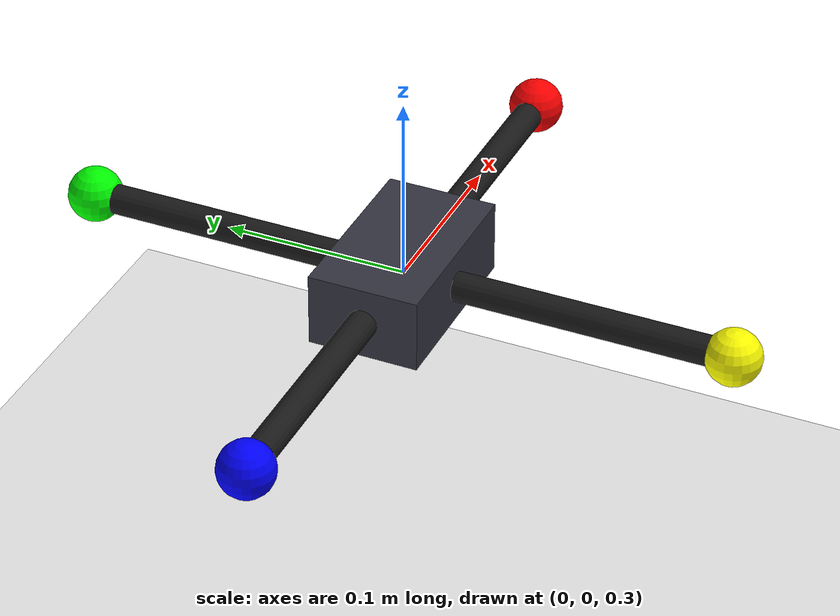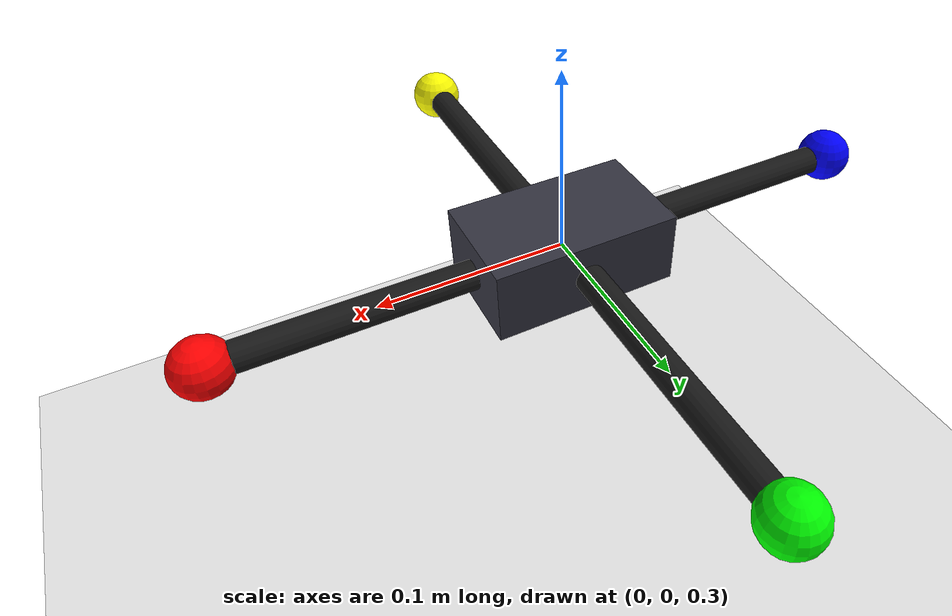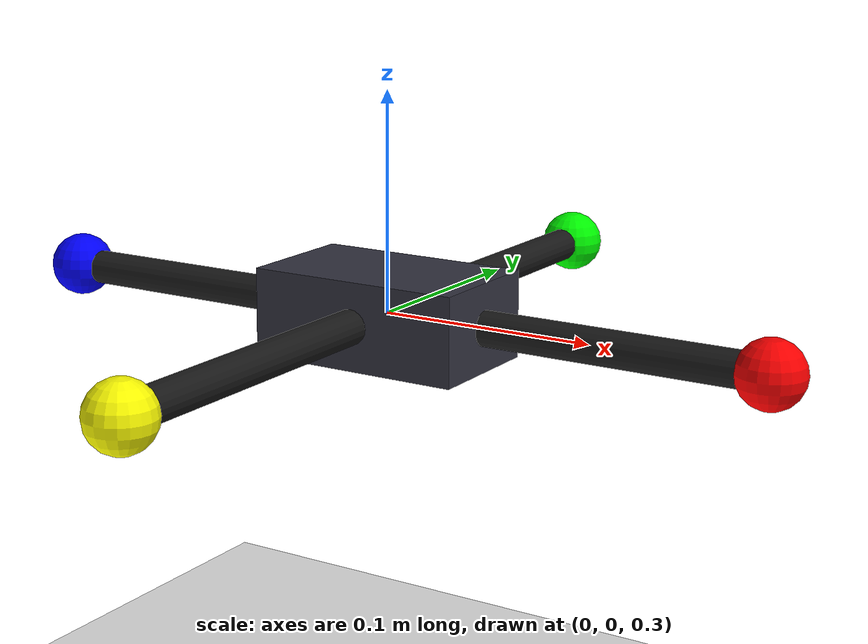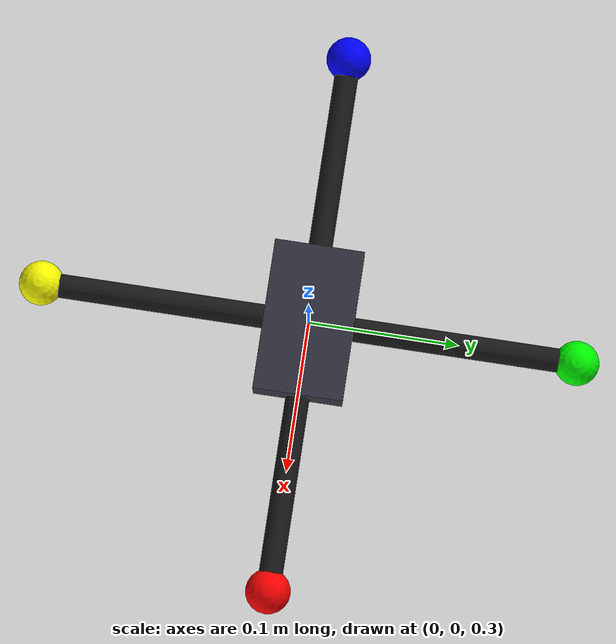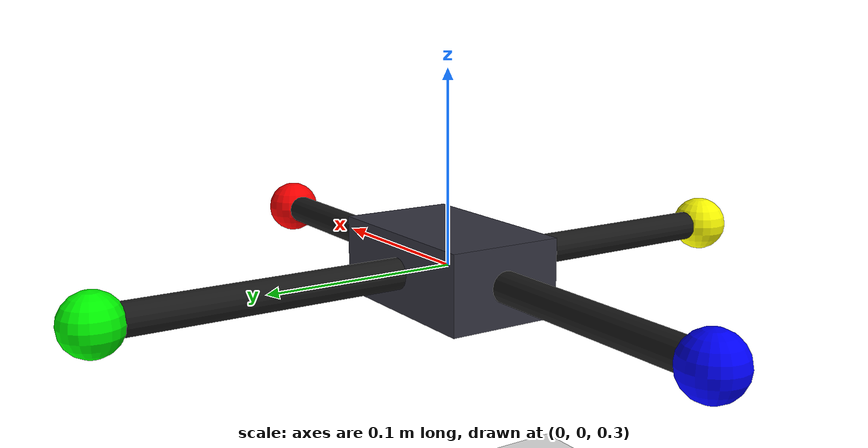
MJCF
<mujoco model="quadrotor">
  <compiler angle="radian" coordinate="local"/>
  <option timestep="0.002" gravity="0 0 -9.81" integrator="RK4"/>

  <visual>
    <headlight ambient="0.6 0.6 0.6" diffuse="0.4 0.4 0.4" specular="0 0 0"/>
  </visual>

  <asset>
    <texture type="skybox" builtin="gradient" rgb1="0.3 0.5 0.7" rgb2="0 0 0" width="512" height="3072"/>
    <material name="body_mat" rgba="0.2 0.2 0.25 1"/>
    <material name="arm_mat"  rgba="0.1 0.1 0.1 1"/>
    <material name="rotor_mat" rgba="0.8 0.1 0.1 1"/>
  </asset>

  <worldbody>
    <light pos="0 0 3"/>
    <geom name="ground" type="plane" size="5 5 0.1" rgba="0.9 0.9 0.9 1"/>

    <body name="drone" pos="0 0 0.3">
      <freejoint/>

      <!-- Main body -->
      <inertial pos="0 0 0" mass="1.0" diaginertia="0.01 0.01 0.02"/>
      <geom name="core" type="box" size="0.05 0.03 0.02" material="body_mat"/>

      <!-- Arms -->
      <geom name="arm_x" type="capsule" fromto="-0.18 0 0  0.18 0 0" size="0.008" material="arm_mat"/>
      <geom name="arm_y" type="capsule" fromto="0 -0.18 0  0 0.18 0" size="0.008" material="arm_mat"/>

      <!-- Rotor markers / thrust application sites -->
      <site name="rotor1" pos=" 0.18  0.00 0" size="0.015" rgba="1 0 0 1"/>
      <site name="rotor2" pos=" 0.00  0.18 0" size="0.015" rgba="0 1 0 1"/>
      <site name="rotor3" pos="-0.18  0.00 0" size="0.015" rgba="0 0 1 1"/>
      <site name="rotor4" pos=" 0.00 -0.18 0" size="0.015" rgba="1 1 0 1"/>
    </body>
  </worldbody>
</mujoco>
